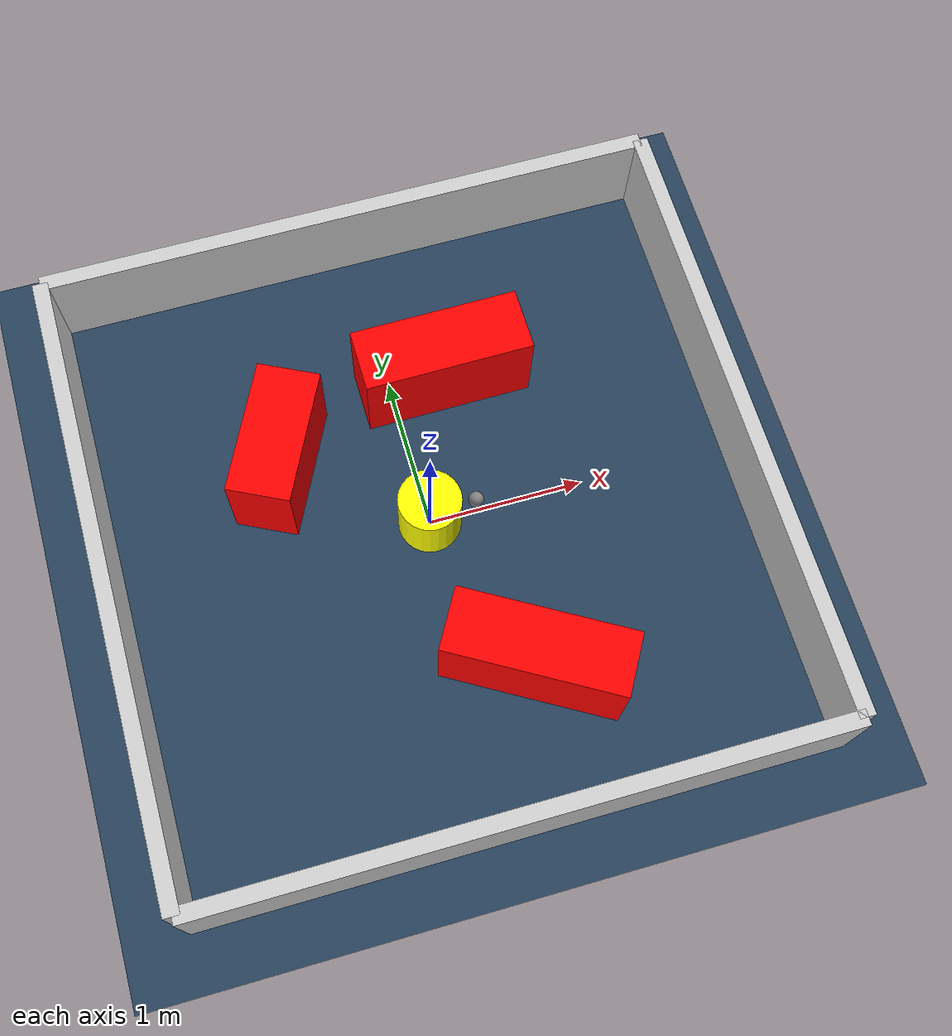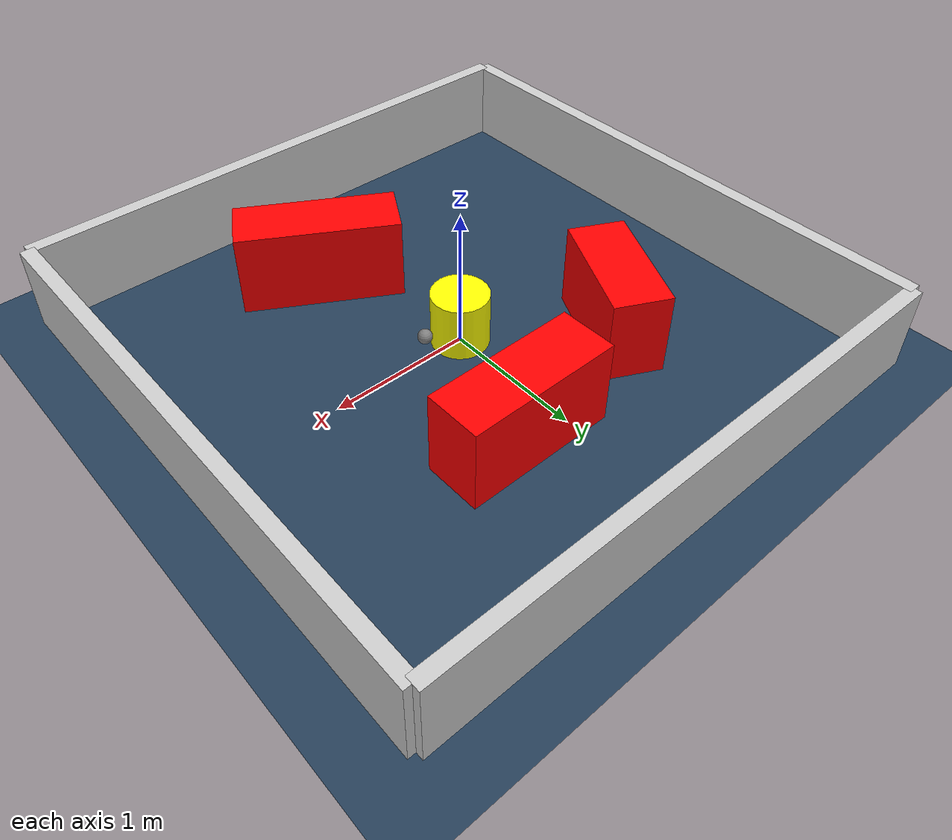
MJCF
<?xml version="1.0" ?>
<mujoco model="generated_environment">
  <option timestep="0.01" integrator="RK4" cone="elliptic"/>
  <default>
    <geom density="1"/>
  </default>
  <asset>
    <texture builtin="gradient" height="3072" rgb1="0.3 0.5 0.7" rgb2="0 0 0" type="skybox" width="512"/>
    <texture builtin="checker" height="300" mark="edge" markrgb="0.8 0.8 0.8" name="groundplane" rgb1="0.2 0.3 0.4" rgb2="0.1 0.2 0.3" type="2d" width="300"/>
    <material name="groundplane" reflectance="0.2" texrepeat="5 5" texture="groundplane" texuniform="true"/>
    <material name="robot" rgba="0.0 1.0 0.0 1"/>
  </asset>
  <worldbody>
    <light dir="0 0 -1" directional="true" pos="0 0 1.5"/>
    <geom condim="4" friction="1.0 0.005 0.001" material="groundplane" name="floor" size="0 0 0.05" type="plane"/>
    <body name="walls">
      <geom name="wall_1" condim="4" pos="-2.0 0.0 0.3" rgba="0.800000011920929 0.800000011920929 0.800000011920929 1.0" size="0.05 2.0 0.3" type="box"/>
      <geom name="wall_2" condim="4" pos="2.0 0.0 0.3" rgba="0.800000011920929 0.800000011920929 0.800000011920929 1.0" size="0.05 2.0 0.3" type="box"/>
      <geom name="wall_3" condim="4" pos="0.0 -2.0 0.3" rgba="0.800000011920929 0.800000011920929 0.800000011920929 1.0" size="2.0 0.05 0.3" type="box"/>
      <geom name="wall_4" condim="4" pos="0.0 2.0 0.3" rgba="0.800000011920929 0.800000011920929 0.800000011920929 1.0" size="2.0 0.05 0.3" type="box"/>
    </body>
    <body name="robot">
      <joint name="joint_x" type="slide" pos="0 0 0" axis="1 0 0"/>
      <joint name="joint_y" type="slide" pos="0 0 0" axis="0 1 0"/>
      <geom name="robot" type="sphere" pos="0.3 0.0 0.2" size="0.05" mass="5." friction="1.0 0.005 0.0001" condim="4" rgba="0.5 0.5 0.5 1.0"/>
      <site name="sensor_ball"/>
    </body>
    <body name="obstacle_movable_1">
      <geom name="obstacle_movable_1" condim="4" pos="0.0 0.0 0.2" euler="0 0 0.0" friction="1.0 0.005 0.001" rgba="1.0 1.0 0.0 1.0" size="0.2 0.2 0.0" type="cylinder" mass="0.1"/>
      <joint type="free"/>
    </body>
    <body name="obstacle_2_static">
      <geom name="obstacle_2_static" condim="4" pos="0.33947354132437724 0.9352709100764247 0.3" euler="0 0 180.42125453337283" friction="1.0 0.005 0.001" rgba="1 0 0 1" size="0.5395353679025638 0.2 0.3" type="box"/>
    </body>
    <body name="obstacle_3_static">
      <geom name="obstacle_3_static" condim="4" pos="-0.8147291888276208 0.6149940754500445 0.3" euler="0 0 63.51007033165222" friction="1.0 0.005 0.001" rgba="1 0 0 1" size="0.42532364345340823 0.2 0.3" type="box"/>
    </body>
    <body name="obstacle_4_static">
      <geom name="obstacle_4_static" condim="4" pos="0.36167362380158585 -1.0814322526704259 0.3" euler="0 0 149.85576451172557" friction="1.0 0.005 0.001" rgba="1 0 0 1" size="0.5602743010467812 0.2 0.3" type="box"/>
    </body>
  </worldbody>
  <actuator>
    <motor name="actuator_x" joint="joint_x" gear="1" ctrlrange="-1 1"/>
    <motor name="actuator_y" joint="joint_y" gear="1" ctrlrange="-1 1"/>
  </actuator>
</mujoco>
